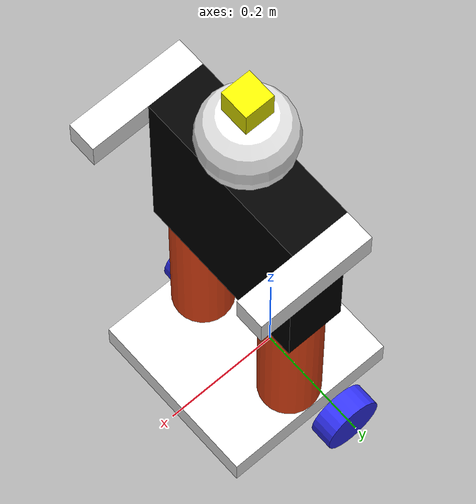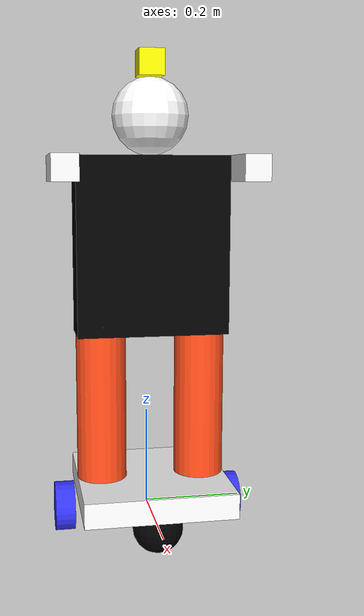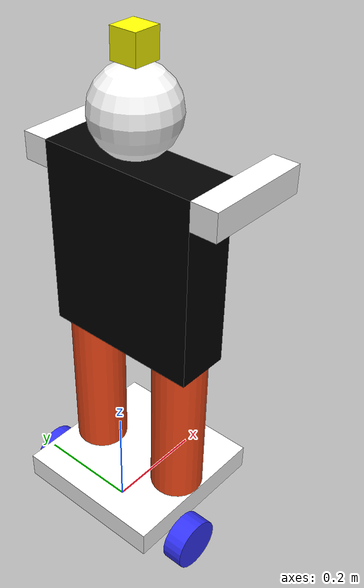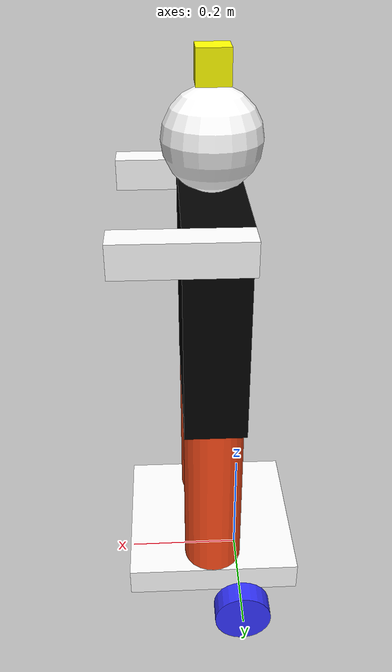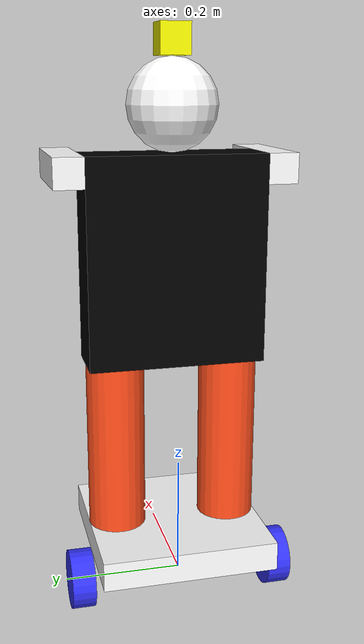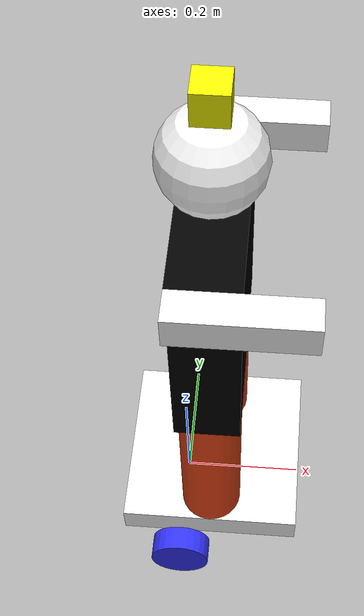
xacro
<?xml version="1.0"?>
<robot xmlns:xacro="http://www.ros.org/wiki/xacro">

    <xacro:include filename="inertial_macros.xacro"/>

    <material name="white">
        <color rgba="1 1 1 1" />
    </material>

    <material name="orange">
        <color rgba="1 0.3 0.1 1" />
    </material>

    <material name="blue">
        <color rgba="0.2 0.2 1 1"/>
    </material>

    <material name="black">
        <color rgba="0 0 0 1"/>
    </material>

    <material name="yellow">
        <color rgba="1 1 0 1"/>
    </material>

    <!-- BASE LINK -->
    <link name="base_link">

    </link>

    <!-- CHASSIS LINK -->
    <joint name="chassis_joint" type="fixed">
        <parent link="base_link" />
        <child link="chassis" />
        <origin xyz = "-0.1 0 0" />
    </joint>

    <link name="chassis">
        <visual>
            <origin xyz = "0.15 0 0.055" />
            <geometry>
                <box size="0.3 0.3 0.05" />
            </geometry>
            <material name="white"/>
        </visual>
        <collision>
            <origin xyz = "0.15 0 0.075" />
            <geometry>
                <box size="0.3 0.3 0.05" />
            </geometry>
        </collision>
        <xacro:inertial_box mass="0.5" x="0.3" y="0.3" z="0.15">
            <origin xyz="0.15 0 0.075" rpy="0 0 0"/>
        </xacro:inertial_box>
    </link>

    <gazebo reference="chassis">
        <material>Gazebo/Grey</material>
    </gazebo>

    <!-- LEFT WHEEL LINK -->

    <joint name ="left_wheel_joint" type="continuous">
        <parent link="base_link"/>
        <child link="left_wheel" />
        <!-- MUST ROTATE THE CYLINDER pi/2 -->
        <origin xyz="0 0.175 0" rpy="-${pi/2} 0 0" />
        <axis xyz="0 0 1"/>
    </joint>

    <link name="left_wheel">
        <visual>
            <geometry>
                <cylinder radius ="0.05" length ="0.04" />
            </geometry>
            <material name="blue"/>
        </visual>
        <collision>
            <geometry>
                <cylinder radius ="0.05" length ="0.04" />
            </geometry>
        </collision>
        <xacro:inertial_cylinder mass="0.1" length="0.04" radius="0.05">
            <origin xyz="0 0 0" rpy="0 0 0" />
        </xacro:inertial_cylinder>
    </link>

    <gazebo reference="left_wheel">
        <material>Gazebo/Blue</material>
    </gazebo>

    <!-- RIGHT WHEEL LINK -->

    <joint name ="right_wheel_joint" type="continuous">
        <parent link="base_link"/>
        <child link="right_wheel" />
        <!-- MUST ROTATE THE CYLINDER pi/2 -->
        <origin xyz="0 -0.175 0" rpy="-${pi/2} 0 0" />
        <axis xyz="0 0 -1"/>
    </joint>

    <link name="right_wheel">
        <visual>
            <geometry>
                <cylinder radius ="0.05" length ="0.04" />
            </geometry>
            <material name="blue"/>
        </visual>
        <collision>
            <geometry>
                <cylinder radius ="0.05" length ="0.04" />
            </geometry>
        </collision>
        <xacro:inertial_cylinder mass="0.1" length="0.04" radius="0.05">
            <origin xyz="0 0 0" rpy="0 0 0" />
        </xacro:inertial_cylinder>
    </link>

    <gazebo reference="right_wheel">
        <material>Gazebo/Blue</material>
    </gazebo>

    <!-- CASTER WHEEL LINK -->
    <joint name ="caster_wheel_joint" type="fixed">
        <parent link="chassis"/>
        <child link="caster_wheel"/>
        <origin xyz="0.24 0 0"/>
    </joint>

    <link name="caster_wheel">
        <visual>
            <geometry>
                <sphere radius="0.05"/>
            </geometry>
            <material name="black"/>
        </visual>
        <collision>
            <geometry>
                <sphere radius="0.05"/>
            </geometry>
        </collision>
        <xacro:inertial_sphere mass="0.1" radius="0.05">
            <origin xyz="0 0 0" rpy="0 0 0"/>
        </xacro:inertial_sphere>
    </link>

    <gazebo reference="caster_wheel">
        <material>Gazebo/Black</material>
        <mu1 value="0.001"/>
        <mu2 value="0.001" />
    </gazebo>

    <!-- LEG LINK 1 -->
    <joint name="leg1_joint" type="fixed">
        <parent link="chassis"/>
        <child link="leg1"/>
        <origin xyz="0.15 0.1 0.25"/>
    </joint>

    <link name="leg1">
        <visual>
            <origin xyz="0 0 0"/>
            <geometry>
                <cylinder radius="0.05" length="0.4"/>
            </geometry>
            <material name="orange"/>
        </visual>
        <collision>
            <origin xyz="0 0 0"/>
            <geometry>
                <cylinder radius="0.05" length="0.4"/>
            </geometry>
        </collision>
        <xacro:inertial_cylinder mass="0.05" length="0.4" radius="0.05">
            <origin xyz="0 0 0" rpy="0 0 0"/>
        </xacro:inertial_cylinder>
    </link>

    <gazebo reference="leg1">
        <material>Gazebo/Orange</material>
    </gazebo>

    <!-- LEG LINK 2 -->
    <joint name="leg2_joint" type="fixed">
        <parent link="chassis"/>
        <child link="leg2"/>
        <origin xyz="0.15 -0.1 0.25"/>
    </joint>

    <link name="leg2">
        <visual>
            <origin xyz="0 0 0"/>
            <geometry>
                <cylinder radius="0.05" length="0.4"/>
            </geometry>
            <material name="orange"/>
        </visual>
        <collision>
            <origin xyz="0 0 0"/>
            <geometry>
                <cylinder radius="0.05" length="0.4"/>
            </geometry>
        </collision>
        <xacro:inertial_cylinder mass="0.05" length="0.4" radius="0.05">
            <origin xyz="0 0 0" rpy="0 0 0"/>
        </xacro:inertial_cylinder>
    </link>

    <gazebo reference="leg2">
        <material>Gazebo/Orange</material>
    </gazebo>

    <!-- UPPER BODY LINK -->
    <joint name="upper_body_joint" type="fixed">
        <parent link="base_link"/>
        <child link="upper_body"/>
        <origin xyz="0.05 0 0.55"/>
    </joint>

    <link name="upper_body">
        <visual>
            <origin xyz="0 0 0"/>
            <geometry>
                <box size="0.1 0.3 0.35"/>
            </geometry>
            <material name="black"/>
        </visual>
        <collision>
            <origin xyz="0 0 0"/>
            <geometry>
                <box size="0.1 0.3 0.35"/>
            </geometry>
        </collision>
        <xacro:inertial_box mass="0.1" x="0.2" y="0.2" z="0.2">
            <origin xyz="0 0 0" rpy="0 0 0"/>
        </xacro:inertial_box>
    </link>

    <gazebo reference="upper_body">
        <material>Gazebo/Black</material>
    </gazebo>

    <!-- HEAD LINK -->
    <joint name="head_joint" type="fixed">
        <parent link="upper_body"/>
        <child link="head"/>
        <origin xyz="0 0 0.25"/>
    </joint>

    <link name="head">
        <visual>
            <origin xyz="0 0 0"/>
            <geometry>
                <sphere radius="0.075"/>
            </geometry>
            <material name="white"/>
        </visual>
        <collision>
            <origin xyz="0 0 0"/>
            <geometry>
                <sphere radius="0.075"/>
            </geometry>
        </collision>
        <xacro:inertial_sphere mass="0.05" radius="0.1">
            <origin xyz="0 0 0" rpy="0 0 0"/>
        </xacro:inertial_sphere>
    </link>

    <gazebo reference="head">
        <material>Gazebo/White</material>
    </gazebo>

    <!-- HAND JOINT -->
    <joint name="hand_joint" type="revolute">
        <parent link="upper_body"/>
        <child link="hand"/>
        <origin xyz="0.0 -0.175 0.15"/>
        <axis xyz="0 1 0"/>
        <limit effort="100.0" velocity="0.5" lower="-3.1416" upper="3.1416"/>
        <dynamics damping="0.1"/>
    </joint>

    <!-- HAND LINK -->
    <link name="hand">
        <visual>
            <origin xyz="0.05 0 0"/>
            <geometry>
                <box size="0.2 0.05 0.05"/>
            </geometry>
            <material name="white"/>
        </visual>
        <collision>
            <origin xyz="0.05 0 0"/>
            <geometry>
                <box size="0.2 0.05 0.05"/>
            </geometry>
        </collision>
        <xacro:inertial_box mass="0.02" x="0.2" y="0.05" z="0.05">
            <origin xyz="0 0 0" rpy="0 0 0"/>
        </xacro:inertial_box>
    </link>

    <gazebo reference="hand">
        <material>Gazebo/White</material>
    </gazebo>

    <!-- OPPOSITE HAND JOINT -->
    <joint name="opposite_hand_joint" type="revolute">
        <parent link="upper_body"/>
        <child link="opposite_hand"/>
        <origin xyz="0.0 0.175 0.15"/>
        <axis xyz="0 1 0"/>
        <limit effort="100.0" velocity="0.5" lower="-3.1416" upper="3.1416"/>
        <dynamics damping="0.1"/>
    </joint>

    <!-- OPPOSITE HAND LINK -->
    <link name="opposite_hand">
        <visual>
            <origin xyz="0.05 0 0"/>
            <geometry>
                <box size="0.2 0.05 0.05"/>
            </geometry>
            <material name="white"/>
        </visual>
        <collision>
            <origin xyz="0.05 0 0"/>
            <geometry>
                <box size="0.2 0.05 0.05"/>
            </geometry>
        </collision>
        <xacro:inertial_box mass="0.02" x="0.2" y="0.05" z="0.05">
            <origin xyz="0 0 0" rpy="0 0 0"/>
        </xacro:inertial_box>
    </link>

    <gazebo reference="opposite_hand">
        <material>Gazebo/White</material>
    </gazebo>

    <!-- CAMERA JOINT -->
    <joint name="camera_joint" type="fixed">
        <parent link="head"/>
        <child link="camera"/>
        <origin xyz="0 0 0.1"/>
    </joint>

    <!-- CAMERA LINK -->
    <link name="camera">
        <visual>
            <origin xyz="0 0 0"/>
            <geometry>
                <box size="0.05 0.05 0.05"/>
            </geometry>
            <material name="yellow"/>
        </visual>
        <collision>
            <origin xyz="0 0 0"/>
            <geometry>
                <box size="0.05 0.05 0.05"/>
            </geometry>
        </collision>
        <xacro:inertial_box mass="0.02" x="0.1" y="0.1" z="0.1">
            <origin xyz="0 0 0" rpy="0 0 0"/>
        </xacro:inertial_box>
    </link>

</robot>
